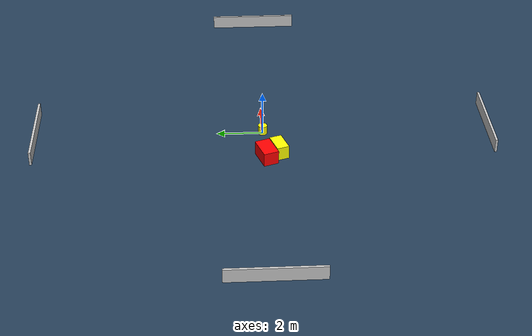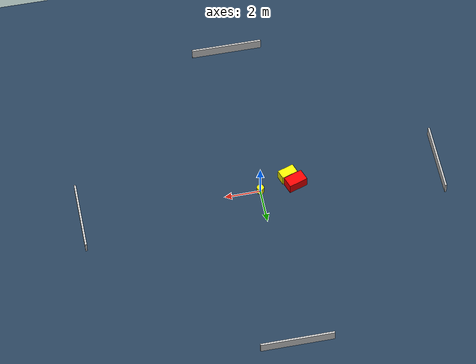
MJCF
<?xml version="1.0" ?>
<mujoco model="generated_environment">
  <option timestep="0.01" integrator="RK4" cone="elliptic"/>
  <default>
    <geom density="1"/>
  </default>
  <asset>
    <texture builtin="gradient" height="3072" name="skybox" rgb1="0.3 0.5 0.7" rgb2="0 0 0" type="skybox" width="512"/>
    <texture builtin="checker" height="300" name="groundplane" rgb1="0.2 0.3 0.4" rgb2="0.1 0.2 0.3" type="2d" width="300"/>
    <material name="groundplane" reflectance="0.2" texrepeat="5 5" texture="groundplane"/>
  </asset>
  <worldbody>
    <light dir="0 0 -1" directional="true" pos="0 0 1.5"/>
    <geom condim="3" friction="0.5 0.005 0.001" material="groundplane" name="floor" pos="0 0 0" size="0 0 0.05" type="plane"/>
    <body name="walls">
      <geom name="wall_1" condim="4" pos="-10.0 0.0 0.3" rgba="0.800000011920929 0.800000011920929 0.800000011920929 1.0" size="0.05 2.0 0.3" type="box"/>
      <geom name="wall_2" condim="4" pos="10.0 0.0 0.3" rgba="0.800000011920929 0.800000011920929 0.800000011920929 1.0" size="0.05 2.0 0.3" type="box"/>
      <geom name="wall_3" condim="4" pos="0.0 -10.0 0.3" rgba="0.800000011920929 0.800000011920929 0.800000011920929 1.0" size="2.0 0.05 0.3" type="box"/>
      <geom name="wall_4" condim="4" pos="0.0 10.0 0.3" rgba="0.800000011920929 0.800000011920929 0.800000011920929 1.0" size="2.0 0.05 0.3" type="box"/>
    </body>
    <body name="robot">
      <joint name="joint_x" type="slide" pos="0 0 0" axis="1 0 0"/>
      <joint name="joint_y" type="slide" pos="0 0 0" axis="0 1 0"/>
      <geom name="robot" type="cylinder" pos="0.0 0.0 0.2" size="0.2 0.2 0.0" mass="5.0" friction="1.0 0.005 0.0001" condim="4" rgba="1.0 1.0 0.0 1.0"/>
    </body>
    <body name="obstacle_1_movable">
      <geom name="obstacle_1_movable" condim="4" pos="-1.6606877581294375 -0.6318434559036726 0.3" euler="0 0 198.58110440876533" friction="0.0 0.005 0.001" rgba="1.0 1.0 0.0 1.0" size="0.46827880497302016 0.26964408828391767 0.3" type="box" mass="0.1"/>
      <joint type="free"/>
    </body>
    <body name="obstacle_2_static">
      <geom name="obstacle_2_static" condim="4" pos="-1.9886278889743765 -0.07970535625806706 0.3" euler="0 0 109.13578597152164" friction="0.0 0.005 0.001" rgba="1.0 0.0 0.0 1.0" size="0.3334701835691376 0.5395960250706302 0.3" type="box"/>
    </body>
  </worldbody>
  <actuator>
    <motor name="actuator_x" joint="joint_x" gear="1" ctrlrange="-1 1"/>
    <motor name="actuator_y" joint="joint_y" gear="1" ctrlrange="-1 1"/>
  </actuator>
</mujoco>
